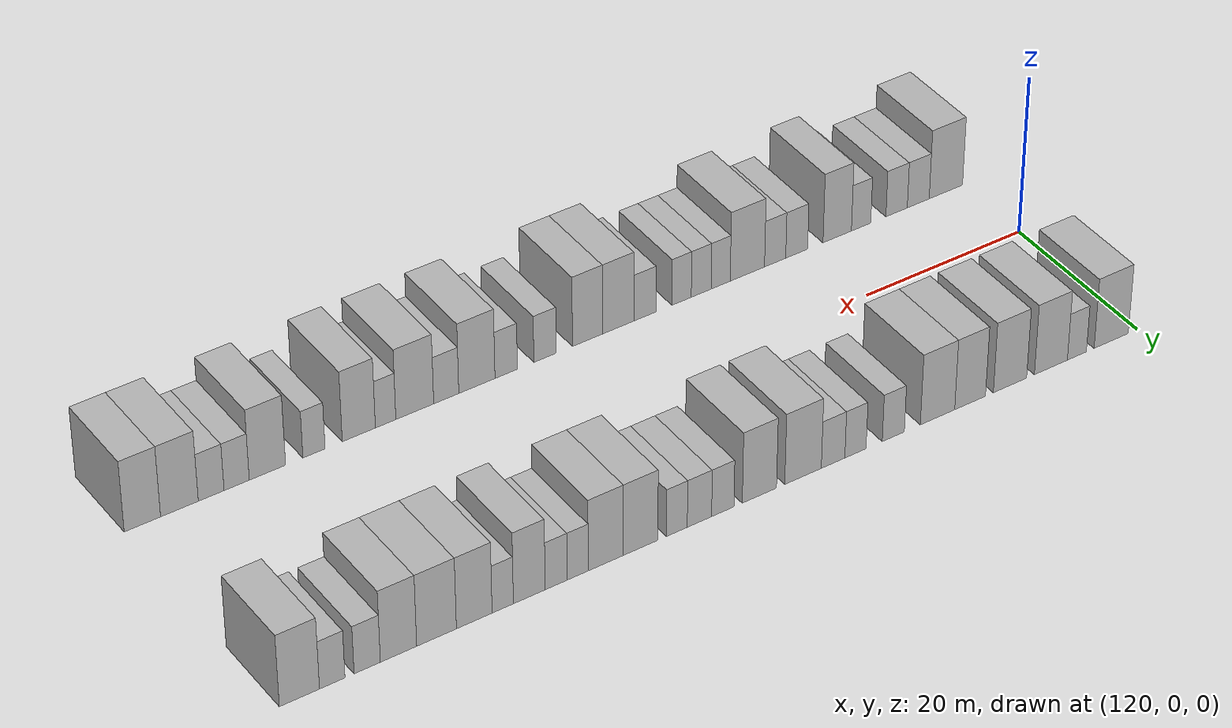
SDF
<sdf version="1.6">
 <world name="default">
  <model name="building_26">
   <static>1</static>
   <pose>123.4322 15.0000 0 0.000000 0.000000 1.570796</pose>
   <link name="link">
    <pose>0 0 4.50 0 0 0</pose>
    <collision name="collision"><geometry><box><size>10.0000 4.4671 9.0000</size></box></geometry></collision>
    <visual name="visual">
     <cast_shadows>0</cast_shadows>
     <geometry><box><size>10.0000 4.4671 9.0000</size></box></geometry>
     <material>
      <script>
       <uri>model://HANNAS_wall/materials/scripts</uri>
       <uri>model://HANNAS_wall/materials/textures</uri>
       <name>vrc/HANNAS_wall</name>
      </script>
     </material>
    </visual>
   </link>
  </model>
  <model name="building_27">
   <static>1</static>
   <pose>127.9022 15.0000 0 0.000000 0.000000 1.570796</pose>
   <link name="link">
    <pose>0 0 3.00 0 0 0</pose>
    <collision name="collision"><geometry><box><size>10.0000 2.4729 6.0000</size></box></geometry></collision>
    <visual name="visual">
     <cast_shadows>0</cast_shadows>
     <geometry><box><size>10.0000 2.4729 6.0000</size></box></geometry>
     <material>
      <script>
       <uri>model://HANNAS_wall/materials/scripts</uri>
       <uri>model://HANNAS_wall/materials/textures</uri>
       <name>vrc/HANNAS_wall</name>
      </script>
     </material>
    </visual>
   </link>
  </model>
  <model name="building_28">
   <static>1</static>
   <pose>131.2680 15.0000 0 0.000000 0.000000 1.570796</pose>
   <link name="link">
    <pose>0 0 4.50 0 0 0</pose>
    <collision name="collision"><geometry><box><size>10.0000 4.2587 9.0000</size></box></geometry></collision>
    <visual name="visual">
     <cast_shadows>0</cast_shadows>
     <geometry><box><size>10.0000 4.2587 9.0000</size></box></geometry>
     <material>
      <script>
       <uri>model://HANNAS_wall/materials/scripts</uri>
       <uri>model://HANNAS_wall/materials/textures</uri>
       <name>vrc/HANNAS_wall</name>
      </script>
     </material>
    </visual>
   </link>
  </model>
  <model name="building_29">
   <static>1</static>
   <pose>136.5224 15.0000 0 0.000000 0.000000 1.570796</pose>
   <link name="link">
    <pose>0 0 4.50 0 0 0</pose>
    <collision name="collision"><geometry><box><size>10.0000 4.2500 9.0000</size></box></geometry></collision>
    <visual name="visual">
     <cast_shadows>0</cast_shadows>
     <geometry><box><size>10.0000 4.2500 9.0000</size></box></geometry>
     <material>
      <script>
       <uri>model://HANNAS_wall/materials/scripts</uri>
       <uri>model://HANNAS_wall/materials/textures</uri>
       <name>vrc/HANNAS_wall</name>
      </script>
     </material>
    </visual>
   </link>
  </model>
  <model name="building_30">
   <static>1</static>
   <pose>141.5976 15.0000 0 0.000000 0.000000 1.570796</pose>
   <link name="link">
    <pose>0 0 4.50 0 0 0</pose>
    <collision name="collision"><geometry><box><size>10.0000 3.9003 9.0000</size></box></geometry></collision>
    <visual name="visual">
     <cast_shadows>0</cast_shadows>
     <geometry><box><size>10.0000 3.9003 9.0000</size></box></geometry>
     <material>
      <script>
       <uri>model://HANNAS_wall/materials/scripts</uri>
       <uri>model://HANNAS_wall/materials/textures</uri>
       <name>vrc/HANNAS_wall</name>
      </script>
     </material>
    </visual>
   </link>
  </model>
  <model name="building_31">
   <static>1</static>
   <pose>145.7080 15.0000 0 0.000000 0.000000 1.570796</pose>
   <link name="link">
    <pose>0 0 4.50 0 0 0</pose>
    <collision name="collision"><geometry><box><size>10.0000 4.3205 9.0000</size></box></geometry></collision>
    <visual name="visual">
     <cast_shadows>0</cast_shadows>
     <geometry><box><size>10.0000 4.3205 9.0000</size></box></geometry>
     <material>
      <script>
       <uri>model://HANNAS_wall/materials/scripts</uri>
       <uri>model://HANNAS_wall/materials/textures</uri>
       <name>vrc/HANNAS_wall</name>
      </script>
     </material>
    </visual>
   </link>
  </model>
  <model name="building_32">
   <static>1</static>
   <pose>151.2421 15.0000 0 0.000000 0.000000 1.570796</pose>
   <link name="link">
    <pose>0 0 3.00 0 0 0</pose>
    <collision name="collision"><geometry><box><size>10.0000 2.7479 6.0000</size></box></geometry></collision>
    <visual name="visual">
     <cast_shadows>0</cast_shadows>
     <geometry><box><size>10.0000 2.7479 6.0000</size></box></geometry>
     <material>
      <script>
       <uri>model://HANNAS_wall/materials/scripts</uri>
       <uri>model://HANNAS_wall/materials/textures</uri>
       <name>vrc/HANNAS_wall</name>
      </script>
     </material>
    </visual>
   </link>
  </model>
  <model name="building_33">
   <static>1</static>
   <pose>155.9254 15.0000 0 0.000000 0.000000 1.570796</pose>
   <link name="link">
    <pose>0 0 3.00 0 0 0</pose>
    <collision name="collision"><geometry><box><size>10.0000 2.6187 6.0000</size></box></geometry></collision>
    <visual name="visual">
     <cast_shadows>0</cast_shadows>
     <geometry><box><size>10.0000 2.6187 6.0000</size></box></geometry>
     <material>
      <script>
       <uri>model://HANNAS_wall/materials/scripts</uri>
       <uri>model://HANNAS_wall/materials/textures</uri>
       <name>vrc/HANNAS_wall</name>
      </script>
     </material>
    </visual>
   </link>
  </model>
  <model name="building_34">
   <static>1</static>
   <pose>158.6791 15.0000 0 0.000000 0.000000 1.570796</pose>
   <link name="link">
    <pose>0 0 3.00 0 0 0</pose>
    <collision name="collision"><geometry><box><size>10.0000 2.8888 6.0000</size></box></geometry></collision>
    <visual name="visual">
     <cast_shadows>0</cast_shadows>
     <geometry><box><size>10.0000 2.8888 6.0000</size></box></geometry>
     <material>
      <script>
       <uri>model://HANNAS_wall/materials/scripts</uri>
       <uri>model://HANNAS_wall/materials/textures</uri>
       <name>vrc/HANNAS_wall</name>
      </script>
     </material>
    </visual>
   </link>
  </model>
  <model name="building_35">
   <static>1</static>
   <pose>162.3498 15.0000 0 0.000000 0.000000 1.570796</pose>
   <link name="link">
    <pose>0 0 4.50 0 0 0</pose>
    <collision name="collision"><geometry><box><size>10.0000 4.4525 9.0000</size></box></geometry></collision>
    <visual name="visual">
     <cast_shadows>0</cast_shadows>
     <geometry><box><size>10.0000 4.4525 9.0000</size></box></geometry>
     <material>
      <script>
       <uri>model://HANNAS_wall/materials/scripts</uri>
       <uri>model://HANNAS_wall/materials/textures</uri>
       <name>vrc/HANNAS_wall</name>
      </script>
     </material>
    </visual>
   </link>
  </model>
  <model name="building_36">
   <static>1</static>
   <pose>167.6373 15.0000 0 0.000000 0.000000 1.570796</pose>
   <link name="link">
    <pose>0 0 4.50 0 0 0</pose>
    <collision name="collision"><geometry><box><size>10.0000 4.1225 9.0000</size></box></geometry></collision>
    <visual name="visual">
     <cast_shadows>0</cast_shadows>
     <geometry><box><size>10.0000 4.1225 9.0000</size></box></geometry>
     <material>
      <script>
       <uri>model://HANNAS_wall/materials/scripts</uri>
       <uri>model://HANNAS_wall/materials/textures</uri>
       <name>vrc/HANNAS_wall</name>
      </script>
     </material>
    </visual>
   </link>
  </model>
  <model name="building_37">
   <static>1</static>
   <pose>172.0362 15.0000 0 0.000000 0.000000 1.570796</pose>
   <link name="link">
    <pose>0 0 3.00 0 0 0</pose>
    <collision name="collision"><geometry><box><size>10.0000 2.6752 6.0000</size></box></geometry></collision>
    <visual name="visual">
     <cast_shadows>0</cast_shadows>
     <geometry><box><size>10.0000 2.6752 6.0000</size></box></geometry>
     <material>
      <script>
       <uri>model://HANNAS_wall/materials/scripts</uri>
       <uri>model://HANNAS_wall/materials/textures</uri>
       <name>vrc/HANNAS_wall</name>
      </script>
     </material>
    </visual>
   </link>
  </model>
  <model name="building_38">
   <static>1</static>
   <pose>174.8219 15.0000 0 0.000000 0.000000 1.570796</pose>
   <link name="link">
    <pose>0 0 3.00 0 0 0</pose>
    <collision name="collision"><geometry><box><size>10.0000 2.8962 6.0000</size></box></geometry></collision>
    <visual name="visual">
     <cast_shadows>0</cast_shadows>
     <geometry><box><size>10.0000 2.8962 6.0000</size></box></geometry>
     <material>
      <script>
       <uri>model://HANNAS_wall/materials/scripts</uri>
       <uri>model://HANNAS_wall/materials/textures</uri>
       <name>vrc/HANNAS_wall</name>
      </script>
     </material>
    </visual>
   </link>
  </model>
  <model name="building_39">
   <static>1</static>
   <pose>177.5052 15.0000 0 0.000000 0.000000 1.570796</pose>
   <link name="link">
    <pose>0 0 3.00 0 0 0</pose>
    <collision name="collision"><geometry><box><size>10.0000 2.4705 6.0000</size></box></geometry></collision>
    <visual name="visual">
     <cast_shadows>0</cast_shadows>
     <geometry><box><size>10.0000 2.4705 6.0000</size></box></geometry>
     <material>
      <script>
       <uri>model://HANNAS_wall/materials/scripts</uri>
       <uri>model://HANNAS_wall/materials/textures</uri>
       <name>vrc/HANNAS_wall</name>
      </script>
     </material>
    </visual>
   </link>
  </model>
  <model name="building_40">
   <static>1</static>
   <pose>181.7657 15.0000 0 0.000000 0.000000 1.570796</pose>
   <link name="link">
    <pose>0 0 4.50 0 0 0</pose>
    <collision name="collision"><geometry><box><size>10.0000 4.0505 9.0000</size></box></geometry></collision>
    <visual name="visual">
     <cast_shadows>0</cast_shadows>
     <geometry><box><size>10.0000 4.0505 9.0000</size></box></geometry>
     <material>
      <script>
       <uri>model://HANNAS_wall/materials/scripts</uri>
       <uri>model://HANNAS_wall/materials/textures</uri>
       <name>vrc/HANNAS_wall</name>
      </script>
     </material>
    </visual>
   </link>
  </model>
  <model name="building_41">
   <static>1</static>
   <pose>185.8350 15.0000 0 0.000000 0.000000 1.570796</pose>
   <link name="link">
    <pose>0 0 4.50 0 0 0</pose>
    <collision name="collision"><geometry><box><size>10.0000 4.0880 9.0000</size></box></geometry></collision>
    <visual name="visual">
     <cast_shadows>0</cast_shadows>
     <geometry><box><size>10.0000 4.0880 9.0000</size></box></geometry>
     <material>
      <script>
       <uri>model://HANNAS_wall/materials/scripts</uri>
       <uri>model://HANNAS_wall/materials/textures</uri>
       <name>vrc/HANNAS_wall</name>
      </script>
     </material>
    </visual>
   </link>
  </model>
  <model name="building_42">
   <static>1</static>
   <pose>189.0985 15.0000 0 0.000000 0.000000 1.570796</pose>
   <link name="link">
    <pose>0 0 3.00 0 0 0</pose>
    <collision name="collision"><geometry><box><size>10.0000 2.4391 6.0000</size></box></geometry></collision>
    <visual name="visual">
     <cast_shadows>0</cast_shadows>
     <geometry><box><size>10.0000 2.4391 6.0000</size></box></geometry>
     <material>
      <script>
       <uri>model://HANNAS_wall/materials/scripts</uri>
       <uri>model://HANNAS_wall/materials/textures</uri>
       <name>vrc/HANNAS_wall</name>
      </script>
     </material>
    </visual>
   </link>
  </model>
  <model name="building_43">
   <static>1</static>
   <pose>191.5861 15.0000 0 0.000000 0.000000 1.570796</pose>
   <link name="link">
    <pose>0 0 3.00 0 0 0</pose>
    <collision name="collision"><geometry><box><size>10.0000 2.5361 6.0000</size></box></geometry></collision>
    <visual name="visual">
     <cast_shadows>0</cast_shadows>
     <geometry><box><size>10.0000 2.5361 6.0000</size></box></geometry>
     <material>
      <script>
       <uri>model://HANNAS_wall/materials/scripts</uri>
       <uri>model://HANNAS_wall/materials/textures</uri>
       <name>vrc/HANNAS_wall</name>
      </script>
     </material>
    </visual>
   </link>
  </model>
  <model name="building_44">
   <static>1</static>
   <pose>194.6744 15.0000 0 0.000000 0.000000 1.570796</pose>
   <link name="link">
    <pose>0 0 4.50 0 0 0</pose>
    <collision name="collision"><geometry><box><size>10.0000 3.6403 9.0000</size></box></geometry></collision>
    <visual name="visual">
     <cast_shadows>0</cast_shadows>
     <geometry><box><size>10.0000 3.6403 9.0000</size></box></geometry>
     <material>
      <script>
       <uri>model://HANNAS_wall/materials/scripts</uri>
       <uri>model://HANNAS_wall/materials/textures</uri>
       <name>vrc/HANNAS_wall</name>
      </script>
     </material>
    </visual>
   </link>
  </model>
  <model name="building_45">
   <static>1</static>
   <pose>197.7072 15.0000 0 0.000000 0.000000 1.570796</pose>
   <link name="link">
    <pose>0 0 3.00 0 0 0</pose>
    <collision name="collision"><geometry><box><size>10.0000 2.4253 6.0000</size></box></geometry></collision>
    <visual name="visual">
     <cast_shadows>0</cast_shadows>
     <geometry><box><size>10.0000 2.4253 6.0000</size></box></geometry>
     <material>
      <script>
       <uri>model://HANNAS_wall/materials/scripts</uri>
       <uri>model://HANNAS_wall/materials/textures</uri>
       <name>vrc/HANNAS_wall</name>
      </script>
     </material>
    </visual>
   </link>
  </model>
  <model name="building_46">
   <static>1</static>
   <pose>200.9372 15.0000 0 0.000000 0.000000 1.570796</pose>
   <link name="link">
    <pose>0 0 4.50 0 0 0</pose>
    <collision name="collision"><geometry><box><size>10.0000 4.0347 9.0000</size></box></geometry></collision>
    <visual name="visual">
     <cast_shadows>0</cast_shadows>
     <geometry><box><size>10.0000 4.0347 9.0000</size></box></geometry>
     <material>
      <script>
       <uri>model://HANNAS_wall/materials/scripts</uri>
       <uri>model://HANNAS_wall/materials/textures</uri>
       <name>vrc/HANNAS_wall</name>
      </script>
     </material>
    </visual>
   </link>
  </model>
  <model name="building_47">
   <static>1</static>
   <pose>205.1812 15.0000 0 0.000000 0.000000 1.570796</pose>
   <link name="link">
    <pose>0 0 4.50 0 0 0</pose>
    <collision name="collision"><geometry><box><size>10.0000 4.4534 9.0000</size></box></geometry></collision>
    <visual name="visual">
     <cast_shadows>0</cast_shadows>
     <geometry><box><size>10.0000 4.4534 9.0000</size></box></geometry>
     <material>
      <script>
       <uri>model://HANNAS_wall/materials/scripts</uri>
       <uri>model://HANNAS_wall/materials/textures</uri>
       <name>vrc/HANNAS_wall</name>
      </script>
     </material>
    </visual>
   </link>
  </model>
  <model name="building_48">
   <static>1</static>
   <pose>209.4274 15.0000 0 0.000000 0.000000 1.570796</pose>
   <link name="link">
    <pose>0 0 4.50 0 0 0</pose>
    <collision name="collision"><geometry><box><size>10.0000 4.0390 9.0000</size></box></geometry></collision>
    <visual name="visual">
     <cast_shadows>0</cast_shadows>
     <geometry><box><size>10.0000 4.0390 9.0000</size></box></geometry>
     <material>
      <script>
       <uri>model://HANNAS_wall/materials/scripts</uri>
       <uri>model://HANNAS_wall/materials/textures</uri>
       <name>vrc/HANNAS_wall</name>
      </script>
     </material>
    </visual>
   </link>
  </model>
  <model name="building_49">
   <static>1</static>
   <pose>212.8988 15.0000 0 0.000000 0.000000 1.570796</pose>
   <link name="link">
    <pose>0 0 3.00 0 0 0</pose>
    <collision name="collision"><geometry><box><size>10.0000 2.9038 6.0000</size></box></geometry></collision>
    <visual name="visual">
     <cast_shadows>0</cast_shadows>
     <geometry><box><size>10.0000 2.9038 6.0000</size></box></geometry>
     <material>
      <script>
       <uri>model://HANNAS_wall/materials/scripts</uri>
       <uri>model://HANNAS_wall/materials/textures</uri>
       <name>vrc/HANNAS_wall</name>
      </script>
     </material>
    </visual>
   </link>
  </model>
  <model name="building_50">
   <static>1</static>
   <pose>216.7484 15.0000 0 0.000000 0.000000 1.570796</pose>
   <link name="link">
    <pose>0 0 3.00 0 0 0</pose>
    <collision name="collision"><geometry><box><size>10.0000 2.7955 6.0000</size></box></geometry></collision>
    <visual name="visual">
     <cast_shadows>0</cast_shadows>
     <geometry><box><size>10.0000 2.7955 6.0000</size></box></geometry>
     <material>
      <script>
       <uri>model://HANNAS_wall/materials/scripts</uri>
       <uri>model://HANNAS_wall/materials/textures</uri>
       <name>vrc/HANNAS_wall</name>
      </script>
     </material>
    </visual>
   </link>
  </model>
  <model name="building_51">
   <static>1</static>
   <pose>220.3315 15.0000 0 0.000000 0.000000 1.570796</pose>
   <link name="link">
    <pose>0 0 4.50 0 0 0</pose>
    <collision name="collision"><geometry><box><size>10.0000 4.3706 9.0000</size></box></geometry></collision>
    <visual name="visual">
     <cast_shadows>0</cast_shadows>
     <geometry><box><size>10.0000 4.3706 9.0000</size></box></geometry>
     <material>
      <script>
       <uri>model://HANNAS_wall/materials/scripts</uri>
       <uri>model://HANNAS_wall/materials/textures</uri>
       <name>vrc/HANNAS_wall</name>
      </script>
     </material>
    </visual>
   </link>
  </model>
  <model name="building_79">
   <static>1</static>
   <pose>122.2723 -15.0000 0 0.000000 0.000000 1.570796</pose>
   <link name="link">
    <pose>0 0 4.50 0 0 0</pose>
    <collision name="collision"><geometry><box><size>10.0000 4.4556 9.0000</size></box></geometry></collision>
    <visual name="visual">
     <cast_shadows>0</cast_shadows>
     <geometry><box><size>10.0000 4.4556 9.0000</size></box></geometry>
     <material>
      <script>
       <uri>model://HANNAS_wall/materials/scripts</uri>
       <uri>model://HANNAS_wall/materials/textures</uri>
       <name>vrc/HANNAS_wall</name>
      </script>
     </material>
    </visual>
   </link>
  </model>
  <model name="building_80">
   <static>1</static>
   <pose>125.9565 -15.0000 0 0.000000 0.000000 1.570796</pose>
   <link name="link">
    <pose>0 0 3.00 0 0 0</pose>
    <collision name="collision"><geometry><box><size>10.0000 2.9128 6.0000</size></box></geometry></collision>
    <visual name="visual">
     <cast_shadows>0</cast_shadows>
     <geometry><box><size>10.0000 2.9128 6.0000</size></box></geometry>
     <material>
      <script>
       <uri>model://HANNAS_wall/materials/scripts</uri>
       <uri>model://HANNAS_wall/materials/textures</uri>
       <name>vrc/HANNAS_wall</name>
      </script>
     </material>
    </visual>
   </link>
  </model>
  <model name="building_81">
   <static>1</static>
   <pose>128.8272 -15.0000 0 0.000000 0.000000 1.570796</pose>
   <link name="link">
    <pose>0 0 3.00 0 0 0</pose>
    <collision name="collision"><geometry><box><size>10.0000 2.8287 6.0000</size></box></geometry></collision>
    <visual name="visual">
     <cast_shadows>0</cast_shadows>
     <geometry><box><size>10.0000 2.8287 6.0000</size></box></geometry>
     <material>
      <script>
       <uri>model://HANNAS_wall/materials/scripts</uri>
       <uri>model://HANNAS_wall/materials/textures</uri>
       <name>vrc/HANNAS_wall</name>
      </script>
     </material>
    </visual>
   </link>
  </model>
  <model name="building_82">
   <static>1</static>
   <pose>133.5096 -15.0000 0 0.000000 0.000000 1.570796</pose>
   <link name="link">
    <pose>0 0 3.00 0 0 0</pose>
    <collision name="collision"><geometry><box><size>10.0000 2.5360 6.0000</size></box></geometry></collision>
    <visual name="visual">
     <cast_shadows>0</cast_shadows>
     <geometry><box><size>10.0000 2.5360 6.0000</size></box></geometry>
     <material>
      <script>
       <uri>model://HANNAS_wall/materials/scripts</uri>
       <uri>model://HANNAS_wall/materials/textures</uri>
       <name>vrc/HANNAS_wall</name>
      </script>
     </material>
    </visual>
   </link>
  </model>
  <model name="building_83">
   <static>1</static>
   <pose>136.6328 -15.0000 0 0.000000 0.000000 1.570796</pose>
   <link name="link">
    <pose>0 0 4.50 0 0 0</pose>
    <collision name="collision"><geometry><box><size>10.0000 3.7104 9.0000</size></box></geometry></collision>
    <visual name="visual">
     <cast_shadows>0</cast_shadows>
     <geometry><box><size>10.0000 3.7104 9.0000</size></box></geometry>
     <material>
      <script>
       <uri>model://HANNAS_wall/materials/scripts</uri>
       <uri>model://HANNAS_wall/materials/textures</uri>
       <name>vrc/HANNAS_wall</name>
      </script>
     </material>
    </visual>
   </link>
  </model>
  <model name="building_84">
   <static>1</static>
   <pose>141.9004 -15.0000 0 0.000000 0.000000 1.570796</pose>
   <link name="link">
    <pose>0 0 3.00 0 0 0</pose>
    <collision name="collision"><geometry><box><size>10.0000 2.8249 6.0000</size></box></geometry></collision>
    <visual name="visual">
     <cast_shadows>0</cast_shadows>
     <geometry><box><size>10.0000 2.8249 6.0000</size></box></geometry>
     <material>
      <script>
       <uri>model://HANNAS_wall/materials/scripts</uri>
       <uri>model://HANNAS_wall/materials/textures</uri>
       <name>vrc/HANNAS_wall</name>
      </script>
     </material>
    </visual>
   </link>
  </model>
  <model name="building_85">
   <static>1</static>
   <pose>144.6768 -15.0000 0 0.000000 0.000000 1.570796</pose>
   <link name="link">
    <pose>0 0 3.00 0 0 0</pose>
    <collision name="collision"><geometry><box><size>10.0000 2.7278 6.0000</size></box></geometry></collision>
    <visual name="visual">
     <cast_shadows>0</cast_shadows>
     <geometry><box><size>10.0000 2.7278 6.0000</size></box></geometry>
     <material>
      <script>
       <uri>model://HANNAS_wall/materials/scripts</uri>
       <uri>model://HANNAS_wall/materials/textures</uri>
       <name>vrc/HANNAS_wall</name>
      </script>
     </material>
    </visual>
   </link>
  </model>
  <model name="building_86">
   <static>1</static>
   <pose>148.2327 -15.0000 0 0.000000 0.000000 1.570796</pose>
   <link name="link">
    <pose>0 0 4.50 0 0 0</pose>
    <collision name="collision"><geometry><box><size>10.0000 4.3840 9.0000</size></box></geometry></collision>
    <visual name="visual">
     <cast_shadows>0</cast_shadows>
     <geometry><box><size>10.0000 4.3840 9.0000</size></box></geometry>
     <material>
      <script>
       <uri>model://HANNAS_wall/materials/scripts</uri>
       <uri>model://HANNAS_wall/materials/textures</uri>
       <name>vrc/HANNAS_wall</name>
      </script>
     </material>
    </visual>
   </link>
  </model>
  <model name="building_87">
   <static>1</static>
   <pose>151.6388 -15.0000 0 0.000000 0.000000 1.570796</pose>
   <link name="link">
    <pose>0 0 3.00 0 0 0</pose>
    <collision name="collision"><geometry><box><size>10.0000 2.4282 6.0000</size></box></geometry></collision>
    <visual name="visual">
     <cast_shadows>0</cast_shadows>
     <geometry><box><size>10.0000 2.4282 6.0000</size></box></geometry>
     <material>
      <script>
       <uri>model://HANNAS_wall/materials/scripts</uri>
       <uri>model://HANNAS_wall/materials/textures</uri>
       <name>vrc/HANNAS_wall</name>
      </script>
     </material>
    </visual>
   </link>
  </model>
  <model name="building_88">
   <static>1</static>
   <pose>154.1074 -15.0000 0 0.000000 0.000000 1.570796</pose>
   <link name="link">
    <pose>0 0 3.00 0 0 0</pose>
    <collision name="collision"><geometry><box><size>10.0000 2.5089 6.0000</size></box></geometry></collision>
    <visual name="visual">
     <cast_shadows>0</cast_shadows>
     <geometry><box><size>10.0000 2.5089 6.0000</size></box></geometry>
     <material>
      <script>
       <uri>model://HANNAS_wall/materials/scripts</uri>
       <uri>model://HANNAS_wall/materials/textures</uri>
       <name>vrc/HANNAS_wall</name>
      </script>
     </material>
    </visual>
   </link>
  </model>
  <model name="building_89">
   <static>1</static>
   <pose>156.5765 -15.0000 0 0.000000 0.000000 1.570796</pose>
   <link name="link">
    <pose>0 0 3.00 0 0 0</pose>
    <collision name="collision"><geometry><box><size>10.0000 2.4293 6.0000</size></box></geometry></collision>
    <visual name="visual">
     <cast_shadows>0</cast_shadows>
     <geometry><box><size>10.0000 2.4293 6.0000</size></box></geometry>
     <material>
      <script>
       <uri>model://HANNAS_wall/materials/scripts</uri>
       <uri>model://HANNAS_wall/materials/textures</uri>
       <name>vrc/HANNAS_wall</name>
      </script>
     </material>
    </visual>
   </link>
  </model>
  <model name="building_90">
   <static>1</static>
   <pose>161.1774 -15.0000 0 0.000000 0.000000 1.570796</pose>
   <link name="link">
    <pose>0 0 3.00 0 0 0</pose>
    <collision name="collision"><geometry><box><size>10.0000 2.7724 6.0000</size></box></geometry></collision>
    <visual name="visual">
     <cast_shadows>0</cast_shadows>
     <geometry><box><size>10.0000 2.7724 6.0000</size></box></geometry>
     <material>
      <script>
       <uri>model://HANNAS_wall/materials/scripts</uri>
       <uri>model://HANNAS_wall/materials/textures</uri>
       <name>vrc/HANNAS_wall</name>
      </script>
     </material>
    </visual>
   </link>
  </model>
  <model name="building_91">
   <static>1</static>
   <pose>164.5001 -15.0000 0 0.000000 0.000000 1.570796</pose>
   <link name="link">
    <pose>0 0 4.50 0 0 0</pose>
    <collision name="collision"><geometry><box><size>10.0000 3.8731 9.0000</size></box></geometry></collision>
    <visual name="visual">
     <cast_shadows>0</cast_shadows>
     <geometry><box><size>10.0000 3.8731 9.0000</size></box></geometry>
     <material>
      <script>
       <uri>model://HANNAS_wall/materials/scripts</uri>
       <uri>model://HANNAS_wall/materials/textures</uri>
       <name>vrc/HANNAS_wall</name>
      </script>
     </material>
    </visual>
   </link>
  </model>
  <model name="building_92">
   <static>1</static>
   <pose>168.2926 -15.0000 0 0.000000 0.000000 1.570796</pose>
   <link name="link">
    <pose>0 0 4.50 0 0 0</pose>
    <collision name="collision"><geometry><box><size>10.0000 3.7120 9.0000</size></box></geometry></collision>
    <visual name="visual">
     <cast_shadows>0</cast_shadows>
     <geometry><box><size>10.0000 3.7120 9.0000</size></box></geometry>
     <material>
      <script>
       <uri>model://HANNAS_wall/materials/scripts</uri>
       <uri>model://HANNAS_wall/materials/textures</uri>
       <name>vrc/HANNAS_wall</name>
      </script>
     </material>
    </visual>
   </link>
  </model>
  <model name="building_93">
   <static>1</static>
   <pose>173.5112 -15.0000 0 0.000000 0.000000 1.570796</pose>
   <link name="link">
    <pose>0 0 3.00 0 0 0</pose>
    <collision name="collision"><geometry><box><size>10.0000 2.7252 6.0000</size></box></geometry></collision>
    <visual name="visual">
     <cast_shadows>0</cast_shadows>
     <geometry><box><size>10.0000 2.7252 6.0000</size></box></geometry>
     <material>
      <script>
       <uri>model://HANNAS_wall/materials/scripts</uri>
       <uri>model://HANNAS_wall/materials/textures</uri>
       <name>vrc/HANNAS_wall</name>
      </script>
     </material>
    </visual>
   </link>
  </model>
  <model name="building_94">
   <static>1</static>
   <pose>178.2301 -15.0000 0 0.000000 0.000000 1.570796</pose>
   <link name="link">
    <pose>0 0 3.00 0 0 0</pose>
    <collision name="collision"><geometry><box><size>10.0000 2.7126 6.0000</size></box></geometry></collision>
    <visual name="visual">
     <cast_shadows>0</cast_shadows>
     <geometry><box><size>10.0000 2.7126 6.0000</size></box></geometry>
     <material>
      <script>
       <uri>model://HANNAS_wall/materials/scripts</uri>
       <uri>model://HANNAS_wall/materials/textures</uri>
       <name>vrc/HANNAS_wall</name>
      </script>
     </material>
    </visual>
   </link>
  </model>
  <model name="building_95">
   <static>1</static>
   <pose>181.7635 -15.0000 0 0.000000 0.000000 1.570796</pose>
   <link name="link">
    <pose>0 0 4.50 0 0 0</pose>
    <collision name="collision"><geometry><box><size>10.0000 4.3543 9.0000</size></box></geometry></collision>
    <visual name="visual">
     <cast_shadows>0</cast_shadows>
     <geometry><box><size>10.0000 4.3543 9.0000</size></box></geometry>
     <material>
      <script>
       <uri>model://HANNAS_wall/materials/scripts</uri>
       <uri>model://HANNAS_wall/materials/textures</uri>
       <name>vrc/HANNAS_wall</name>
      </script>
     </material>
    </visual>
   </link>
  </model>
  <model name="building_96">
   <static>1</static>
   <pose>185.4403 -15.0000 0 0.000000 0.000000 1.570796</pose>
   <link name="link">
    <pose>0 0 3.00 0 0 0</pose>
    <collision name="collision"><geometry><box><size>10.0000 2.9993 6.0000</size></box></geometry></collision>
    <visual name="visual">
     <cast_shadows>0</cast_shadows>
     <geometry><box><size>10.0000 2.9993 6.0000</size></box></geometry>
     <material>
      <script>
       <uri>model://HANNAS_wall/materials/scripts</uri>
       <uri>model://HANNAS_wall/materials/textures</uri>
       <name>vrc/HANNAS_wall</name>
      </script>
     </material>
    </visual>
   </link>
  </model>
  <model name="building_97">
   <static>1</static>
   <pose>189.1846 -15.0000 0 0.000000 0.000000 1.570796</pose>
   <link name="link">
    <pose>0 0 4.50 0 0 0</pose>
    <collision name="collision"><geometry><box><size>10.0000 4.4893 9.0000</size></box></geometry></collision>
    <visual name="visual">
     <cast_shadows>0</cast_shadows>
     <geometry><box><size>10.0000 4.4893 9.0000</size></box></geometry>
     <material>
      <script>
       <uri>model://HANNAS_wall/materials/scripts</uri>
       <uri>model://HANNAS_wall/materials/textures</uri>
       <name>vrc/HANNAS_wall</name>
      </script>
     </material>
    </visual>
   </link>
  </model>
  <model name="building_98">
   <static>1</static>
   <pose>192.6332 -15.0000 0 0.000000 0.000000 1.570796</pose>
   <link name="link">
    <pose>0 0 3.00 0 0 0</pose>
    <collision name="collision"><geometry><box><size>10.0000 2.4080 6.0000</size></box></geometry></collision>
    <visual name="visual">
     <cast_shadows>0</cast_shadows>
     <geometry><box><size>10.0000 2.4080 6.0000</size></box></geometry>
     <material>
      <script>
       <uri>model://HANNAS_wall/materials/scripts</uri>
       <uri>model://HANNAS_wall/materials/textures</uri>
       <name>vrc/HANNAS_wall</name>
      </script>
     </material>
    </visual>
   </link>
  </model>
  <model name="building_99">
   <static>1</static>
   <pose>195.7785 -15.0000 0 0.000000 0.000000 1.570796</pose>
   <link name="link">
    <pose>0 0 4.50 0 0 0</pose>
    <collision name="collision"><geometry><box><size>10.0000 3.8827 9.0000</size></box></geometry></collision>
    <visual name="visual">
     <cast_shadows>0</cast_shadows>
     <geometry><box><size>10.0000 3.8827 9.0000</size></box></geometry>
     <material>
      <script>
       <uri>model://HANNAS_wall/materials/scripts</uri>
       <uri>model://HANNAS_wall/materials/textures</uri>
       <name>vrc/HANNAS_wall</name>
      </script>
     </material>
    </visual>
   </link>
  </model>
  <model name="building_100">
   <static>1</static>
   <pose>201.0067 -15.0000 0 0.000000 0.000000 1.570796</pose>
   <link name="link">
    <pose>0 0 3.00 0 0 0</pose>
    <collision name="collision"><geometry><box><size>10.0000 2.5736 6.0000</size></box></geometry></collision>
    <visual name="visual">
     <cast_shadows>0</cast_shadows>
     <geometry><box><size>10.0000 2.5736 6.0000</size></box></geometry>
     <material>
      <script>
       <uri>model://HANNAS_wall/materials/scripts</uri>
       <uri>model://HANNAS_wall/materials/textures</uri>
       <name>vrc/HANNAS_wall</name>
      </script>
     </material>
    </visual>
   </link>
  </model>
  <model name="building_101">
   <static>1</static>
   <pose>206.3790 -15.0000 0 0.000000 0.000000 1.570796</pose>
   <link name="link">
    <pose>0 0 4.50 0 0 0</pose>
    <collision name="collision"><geometry><box><size>10.0000 4.1710 9.0000</size></box></geometry></collision>
    <visual name="visual">
     <cast_shadows>0</cast_shadows>
     <geometry><box><size>10.0000 4.1710 9.0000</size></box></geometry>
     <material>
      <script>
       <uri>model://HANNAS_wall/materials/scripts</uri>
       <uri>model://HANNAS_wall/materials/textures</uri>
       <name>vrc/HANNAS_wall</name>
      </script>
     </material>
    </visual>
   </link>
  </model>
  <model name="building_102">
   <static>1</static>
   <pose>209.9027 -15.0000 0 0.000000 0.000000 1.570796</pose>
   <link name="link">
    <pose>0 0 3.00 0 0 0</pose>
    <collision name="collision"><geometry><box><size>10.0000 2.8764 6.0000</size></box></geometry></collision>
    <visual name="visual">
     <cast_shadows>0</cast_shadows>
     <geometry><box><size>10.0000 2.8764 6.0000</size></box></geometry>
     <material>
      <script>
       <uri>model://HANNAS_wall/materials/scripts</uri>
       <uri>model://HANNAS_wall/materials/textures</uri>
       <name>vrc/HANNAS_wall</name>
      </script>
     </material>
    </visual>
   </link>
  </model>
  <model name="building_103">
   <static>1</static>
   <pose>212.8033 -15.0000 0 0.000000 0.000000 1.570796</pose>
   <link name="link">
    <pose>0 0 3.00 0 0 0</pose>
    <collision name="collision"><geometry><box><size>10.0000 2.9248 6.0000</size></box></geometry></collision>
    <visual name="visual">
     <cast_shadows>0</cast_shadows>
     <geometry><box><size>10.0000 2.9248 6.0000</size></box></geometry>
     <material>
      <script>
       <uri>model://HANNAS_wall/materials/scripts</uri>
       <uri>model://HANNAS_wall/materials/textures</uri>
       <name>vrc/HANNAS_wall</name>
      </script>
     </material>
    </visual>
   </link>
  </model>
  <model name="building_104">
   <static>1</static>
   <pose>216.3902 -15.0000 0 0.000000 0.000000 1.570796</pose>
   <link name="link">
    <pose>0 0 4.50 0 0 0</pose>
    <collision name="collision"><geometry><box><size>10.0000 4.2490 9.0000</size></box></geometry></collision>
    <visual name="visual">
     <cast_shadows>0</cast_shadows>
     <geometry><box><size>10.0000 4.2490 9.0000</size></box></geometry>
     <material>
      <script>
       <uri>model://HANNAS_wall/materials/scripts</uri>
       <uri>model://HANNAS_wall/materials/textures</uri>
       <name>vrc/HANNAS_wall</name>
      </script>
     </material>
    </visual>
   </link>
  </model>
  <model name="building_105">
   <static>1</static>
   <pose>220.5502 -15.0000 0 0.000000 0.000000 1.570796</pose>
   <link name="link">
    <pose>0 0 4.50 0 0 0</pose>
    <collision name="collision"><geometry><box><size>10.0000 4.0710 9.0000</size></box></geometry></collision>
    <visual name="visual">
     <cast_shadows>0</cast_shadows>
     <geometry><box><size>10.0000 4.0710 9.0000</size></box></geometry>
     <material>
      <script>
       <uri>model://HANNAS_wall/materials/scripts</uri>
       <uri>model://HANNAS_wall/materials/textures</uri>
       <name>vrc/HANNAS_wall</name>
      </script>
     </material>
    </visual>
   </link>
  </model>
 </world>
</sdf>
